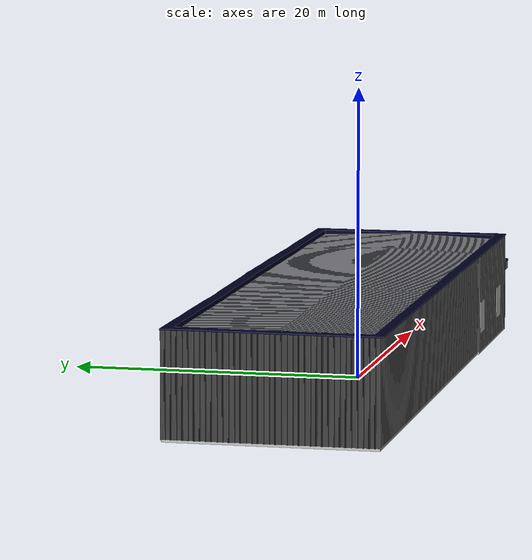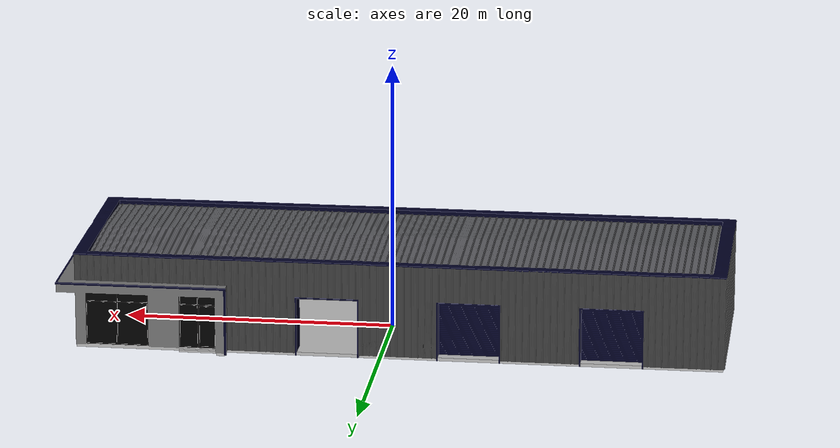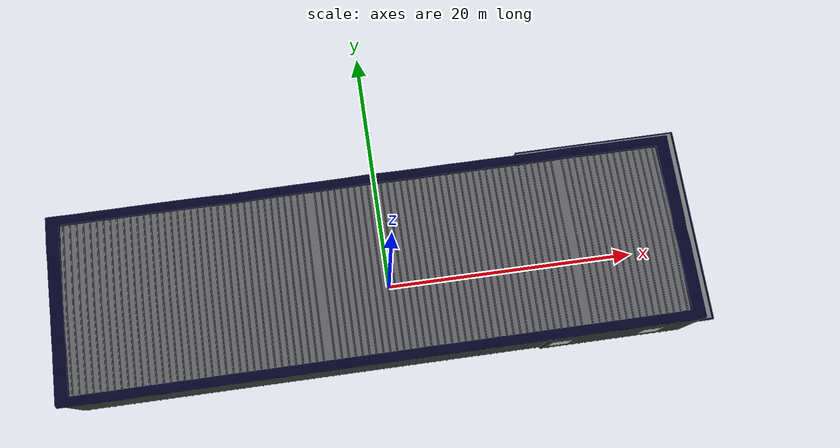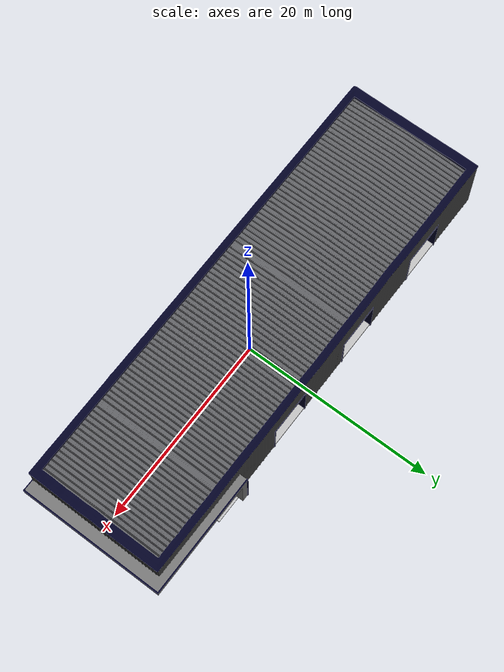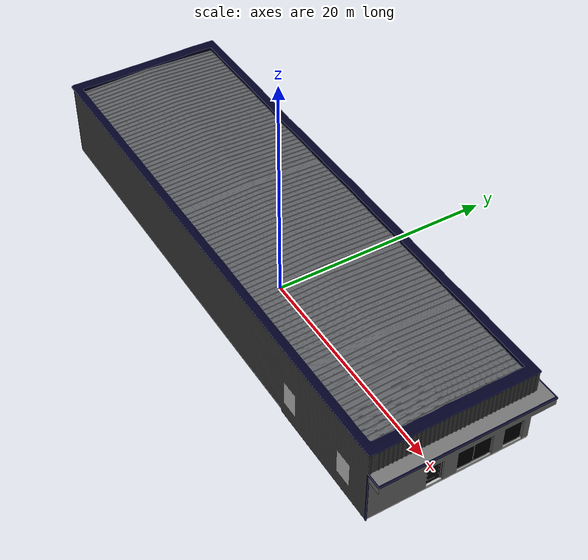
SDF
<sdf version="1.9">
  <model name="highbay_building">
    <static>true</static>

    <link name="link">
      <visual name="visual">
        <geometry>
          <mesh>
            <uri>model://highbay_building/meshes/highbay_building.dae</uri>
          </mesh>
        </geometry>
      </visual>

      <!-- Use box collision to avoid segfault from mesh submeshes with 0 normals -->
      <collision name="collision">
        <geometry>
          <box>
            <size>50 16 12</size>
          </box>
        </geometry>
      </collision>
    </link>
  </model>
</sdf>
